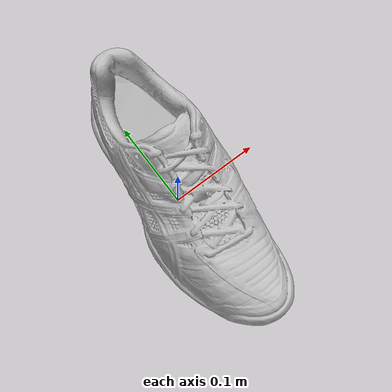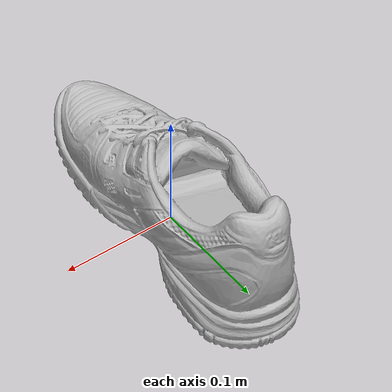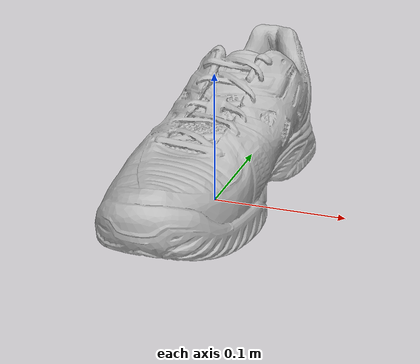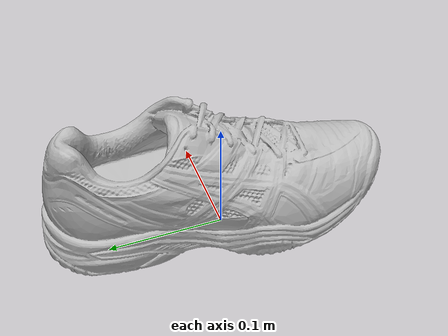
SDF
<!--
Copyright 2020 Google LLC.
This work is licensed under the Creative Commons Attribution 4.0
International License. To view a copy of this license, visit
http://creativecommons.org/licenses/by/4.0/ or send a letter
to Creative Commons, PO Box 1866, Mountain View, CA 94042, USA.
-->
<?xml version="1.0" ?>
<sdf version="1.6">
  <model name="ASICS_GELChallenger_9_Royal_BlueWhiteBlack">
    <link name="link_0">
      <visual name="visual">
        <geometry>
          <mesh>
            <uri>meshes/model.obj</uri>
          </mesh>
        </geometry>
      </visual>
      <collision name="collision_0">
        <geometry>
          <mesh>
            <uri>meshes/model.obj</uri>
          </mesh>
        </geometry>
      </collision>
    </link>
  </model>
</sdf>
